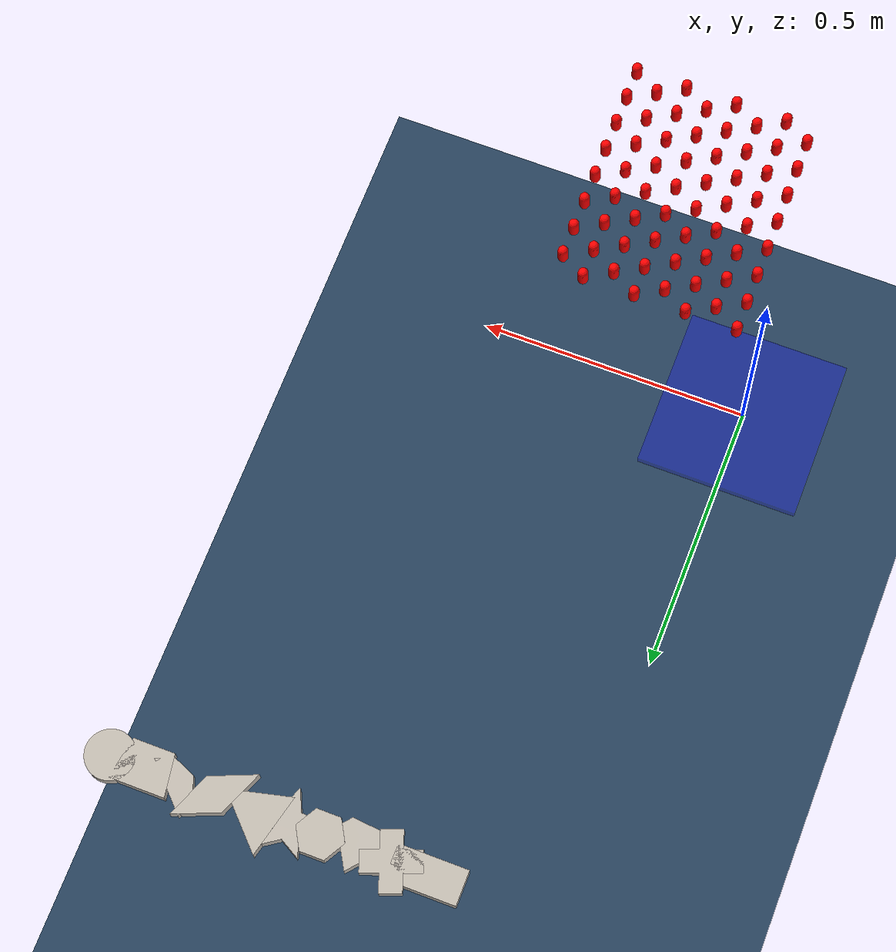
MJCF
<mujoco model="scene">
    <include file="delta_array.xml"/>

    <compiler autolimits="true" angle="degree"/>
    <option integrator="implicitfast" timestep="0.0005">
      <flag multiccd="enable" />
    </option>
    <visual>
      <headlight diffuse="0.6 0.6 0.6" ambient="0.3 0.3 0.3" specular="0 0 0"/>
      <rgba haze="0.15 0.25 0.35 1"/>
      <global fovy="58" azimuth="0" elevation="90"/>
    </visual>
    <statistic center="0.13125 0.1407285 1.5" extent="0.85"/>

    <asset>
      <texture type="skybox" builtin="gradient" rgb1="0.3 0.5 0.7" rgb2="0 0 0" width="512" height="3072"/>
      <texture type="2d" name="groundplane" builtin="checker" mark="edge" rgb1="0.2 0.3 0.4" rgb2="0.1 0.2 0.3"
        markrgb="0.8 0.8 0.8" width="5" height="5"/>
      <material name="groundplane" texture="groundplane" texuniform="true" texrepeat="5 5" reflectance="0.2"/>
      <material name="collision_material" rgba="0 0 0 0"/> <!-- transparent for collision -->
      <material name="visual_material" rgba="0 0 1 0.3"/> <!-- Blue semi-transparent for visual -->
    </asset>

    <worldbody>
      <light pos="0 0 1.5" dir="0 0 -1" directional="true"/>
      <geom name="floor" size="0 0 0.05" type="plane" material="groundplane"/>
    </worldbody>
  </mujoco>

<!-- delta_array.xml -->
<mujoco model="scene">
  <compiler autolimits="true" angle="degree" />
  <option integrator="implicitfast" timestep="0.002">
    <flag multiccd="disable" />
  </option>
  <default>
    <geom type="capsule" size="0.0075 0.01" mass="0.4" condim="6" />
  </default>
  <visual>
    <headlight diffuse="0.6 0.6 0.6" ambient="0.3 0.3 0.3" specular="0 0 0" />
    <rgba haze="0.15 0.25 0.35 1" />
    <global fovy="58" azimuth="0" elevation="90" offwidth="1920" offheight="1080" />
  </visual>
  <statistic center="0.13125 0.1407285 1.5" extent="0.85" />
  <asset>
    <texture type="skybox" builtin="gradient" rgb1="0.3 0.5 0.7" rgb2="0 0 0" width="512" height="3072" />
    <texture type="2d" name="groundplane" builtin="checker" mark="edge" rgb1="0.2 0.3 0.4" rgb2="0.1 0.2 0.3" markrgb="0.8 0.8 0.8" width="300" height="300" />
    <material name="groundplane" texture="groundplane" texuniform="true" texrepeat="5 5" reflectance="0.2" />
    <material name="collision_material" rgba="0 0 0 0" />
    <material name="visual_material" rgba="0 0 1 0.3" />
    <texture name="generic_obj" file="config/assets/texture.png" type="2d" />
    <material name="generic_obj" texture="generic_obj" specular="0.5" shininess="0.5" />
    <mesh file="config/assets/block.obj" scale="1 1 1" />
    <mesh file="config/assets/cross.obj" scale="1 1 1" />
    <mesh file="config/assets/diamond.obj" scale="1 1 1" />
    <mesh file="config/assets/hexagon.obj" scale="1 1 1" />
    <mesh file="config/assets/star.obj" scale="1 1 1" />
    <mesh file="config/assets/triangle.obj" scale="1 1 1" />
    <mesh file="config/assets/parallelogram.obj" scale="1 1 1" />
    <mesh file="config/assets/semicircle.obj" scale="1 1 1" />
    <mesh file="config/assets/trapezium.obj" scale="1 1 1" />
    <mesh file="config/assets/disc.obj" scale="1 1 1" />
  </asset>
  <worldbody>
    <light pos="0 0 1.5" dir="0 0 -1" directional="true" />
    <geom name="floor" size="0 0 0.05" type="plane" material="groundplane" />
    <body name="fingertip_0" pos="0.000000 0.000000 1.100000">
      <geom rgba="1 0 0 1" />
      <joint name="fingertip_0_x" type="slide" axis="1 0 0" limited="true" range="-0.03 0.03" />
      <joint name="fingertip_0_y" type="slide" axis="0 1 0" limited="true" range="-0.03 0.03" />
      <joint name="fingertip_0_z" type="slide" axis="0 0 1" limited="true" range="0.015 0.2" />
    </body>
    <body name="fingertip_1" pos="0.000000 0.043301 1.100000">
      <geom rgba="1 0 0 1" />
      <joint name="fingertip_1_x" type="slide" axis="1 0 0" limited="true" range="-0.03 0.03" />
      <joint name="fingertip_1_y" type="slide" axis="0 1 0" limited="true" range="-0.03 0.03" />
      <joint name="fingertip_1_z" type="slide" axis="0 0 1" limited="true" range="0.015 0.2" />
    </body>
    <body name="fingertip_2" pos="0.000000 0.086602 1.100000">
      <geom rgba="1 0 0 1" />
      <joint name="fingertip_2_x" type="slide" axis="1 0 0" limited="true" range="-0.03 0.03" />
      <joint name="fingertip_2_y" type="slide" axis="0 1 0" limited="true" range="-0.03 0.03" />
      <joint name="fingertip_2_z" type="slide" axis="0 0 1" limited="true" range="0.015 0.2" />
    </body>
    <body name="fingertip_3" pos="0.000000 0.129903 1.100000">
      <geom rgba="1 0 0 1" />
      <joint name="fingertip_3_x" type="slide" axis="1 0 0" limited="true" range="-0.03 0.03" />
      <joint name="fingertip_3_y" type="slide" axis="0 1 0" limited="true" range="-0.03 0.03" />
      <joint name="fingertip_3_z" type="slide" axis="0 0 1" limited="true" range="0.015 0.2" />
    </body>
    <body name="fingertip_4" pos="0.000000 0.173204 1.100000">
      <geom rgba="1 0 0 1" />
      <joint name="fingertip_4_x" type="slide" axis="1 0 0" limited="true" range="-0.03 0.03" />
      <joint name="fingertip_4_y" type="slide" axis="0 1 0" limited="true" range="-0.03 0.03" />
      <joint name="fingertip_4_z" type="slide" axis="0 0 1" limited="true" range="0.015 0.2" />
    </body>
    <body name="fingertip_5" pos="0.000000 0.216505 1.100000">
      <geom rgba="1 0 0 1" />
      <joint name="fingertip_5_x" type="slide" axis="1 0 0" limited="true" range="-0.03 0.03" />
      <joint name="fingertip_5_y" type="slide" axis="0 1 0" limited="true" range="-0.03 0.03" />
      <joint name="fingertip_5_z" type="slide" axis="0 0 1" limited="true" range="0.015 0.2" />
    </body>
    <body name="fingertip_6" pos="0.000000 0.259806 1.100000">
      <geom rgba="1 0 0 1" />
      <joint name="fingertip_6_x" type="slide" axis="1 0 0" limited="true" range="-0.03 0.03" />
      <joint name="fingertip_6_y" type="slide" axis="0 1 0" limited="true" range="-0.03 0.03" />
      <joint name="fingertip_6_z" type="slide" axis="0 0 1" limited="true" range="0.015 0.2" />
    </body>
    <body name="fingertip_7" pos="0.000000 0.303107 1.100000">
      <geom rgba="1 0 0 1" />
      <joint name="fingertip_7_x" type="slide" axis="1 0 0" limited="true" range="-0.03 0.03" />
      <joint name="fingertip_7_y" type="slide" axis="0 1 0" limited="true" range="-0.03 0.03" />
      <joint name="fingertip_7_z" type="slide" axis="0 0 1" limited="true" range="0.015 0.2" />
    </body>
    <body name="fingertip_8" pos="0.037500 -0.021650 1.100000">
      <geom rgba="1 0 0 1" />
      <joint name="fingertip_8_x" type="slide" axis="1 0 0" limited="true" range="-0.03 0.03" />
      <joint name="fingertip_8_y" type="slide" axis="0 1 0" limited="true" range="-0.03 0.03" />
      <joint name="fingertip_8_z" type="slide" axis="0 0 1" limited="true" range="0.015 0.2" />
    </body>
    <body name="fingertip_9" pos="0.037500 0.021651 1.100000">
      <geom rgba="1 0 0 1" />
      <joint name="fingertip_9_x" type="slide" axis="1 0 0" limited="true" range="-0.03 0.03" />
      <joint name="fingertip_9_y" type="slide" axis="0 1 0" limited="true" range="-0.03 0.03" />
      <joint name="fingertip_9_z" type="slide" axis="0 0 1" limited="true" range="0.015 0.2" />
    </body>
    <body name="fingertip_10" pos="0.037500 0.064952 1.100000">
      <geom rgba="1 0 0 1" />
      <joint name="fingertip_10_x" type="slide" axis="1 0 0" limited="true" range="-0.03 0.03" />
      <joint name="fingertip_10_y" type="slide" axis="0 1 0" limited="true" range="-0.03 0.03" />
      <joint name="fingertip_10_z" type="slide" axis="0 0 1" limited="true" range="0.015 0.2" />
    </body>
    <body name="fingertip_11" pos="0.037500 0.108253 1.100000">
      <geom rgba="1 0 0 1" />
      <joint name="fingertip_11_x" type="slide" axis="1 0 0" limited="true" range="-0.03 0.03" />
      <joint name="fingertip_11_y" type="slide" axis="0 1 0" limited="true" range="-0.03 0.03" />
      <joint name="fingertip_11_z" type="slide" axis="0 0 1" limited="true" range="0.015 0.2" />
    </body>
    <body name="fingertip_12" pos="0.037500 0.151554 1.100000">
      <geom rgba="1 0 0 1" />
      <joint name="fingertip_12_x" type="slide" axis="1 0 0" limited="true" range="-0.03 0.03" />
      <joint name="fingertip_12_y" type="slide" axis="0 1 0" limited="true" range="-0.03 0.03" />
      <joint name="fingertip_12_z" type="slide" axis="0 0 1" limited="true" range="0.015 0.2" />
    </body>
    <body name="fingertip_13" pos="0.037500 0.194855 1.100000">
      <geom rgba="1 0 0 1" />
      <joint name="fingertip_13_x" type="slide" axis="1 0 0" limited="true" range="-0.03 0.03" />
      <joint name="fingertip_13_y" type="slide" axis="0 1 0" limited="true" range="-0.03 0.03" />
      <joint name="fingertip_13_z" type="slide" axis="0 0 1" limited="true" range="0.015 0.2" />
    </body>
    <body name="fingertip_14" pos="0.037500 0.238156 1.100000">
      <geom rgba="1 0 0 1" />
      <joint name="fingertip_14_x" type="slide" axis="1 0 0" limited="true" range="-0.03 0.03" />
      <joint name="fingertip_14_y" type="slide" axis="0 1 0" limited="true" range="-0.03 0.03" />
      <joint name="fingertip_14_z" type="slide" axis="0 0 1" limited="true" range="0.015 0.2" />
    </body>
    <body name="fingertip_15" pos="0.037500 0.281457 1.100000">
      <geom rgba="1 0 0 1" />
      <joint name="fingertip_15_x" type="slide" axis="1 0 0" limited="true" range="-0.03 0.03" />
      <joint name="fingertip_15_y" type="slide" axis="0 1 0" limited="true" range="-0.03 0.03" />
      <joint name="fingertip_15_z" type="slide" axis="0 0 1" limited="true" range="0.015 0.2" />
    </body>
    <body name="fingertip_16" pos="0.075000 0.000000 1.100000">
      <geom rgba="1 0 0 1" />
      <joint name="fingertip_16_x" type="slide" axis="1 0 0" limited="true" range="-0.03 0.03" />
      <joint name="fingertip_16_y" type="slide" axis="0 1 0" limited="true" range="-0.03 0.03" />
      <joint name="fingertip_16_z" type="slide" axis="0 0 1" limited="true" range="0.015 0.2" />
    </body>
    <body name="fingertip_17" pos="0.075000 0.043301 1.100000">
      <geom rgba="1 0 0 1" />
      <joint name="fingertip_17_x" type="slide" axis="1 0 0" limited="true" range="-0.03 0.03" />
      <joint name="fingertip_17_y" type="slide" axis="0 1 0" limited="true" range="-0.03 0.03" />
      <joint name="fingertip_17_z" type="slide" axis="0 0 1" limited="true" range="0.015 0.2" />
    </body>
    <body name="fingertip_18" pos="0.075000 0.086602 1.100000">
      <geom rgba="1 0 0 1" />
      <joint name="fingertip_18_x" type="slide" axis="1 0 0" limited="true" range="-0.03 0.03" />
      <joint name="fingertip_18_y" type="slide" axis="0 1 0" limited="true" range="-0.03 0.03" />
      <joint name="fingertip_18_z" type="slide" axis="0 0 1" limited="true" range="0.015 0.2" />
    </body>
    <body name="fingertip_19" pos="0.075000 0.129903 1.100000">
      <geom rgba="1 0 0 1" />
      <joint name="fingertip_19_x" type="slide" axis="1 0 0" limited="true" range="-0.03 0.03" />
      <joint name="fingertip_19_y" type="slide" axis="0 1 0" limited="true" range="-0.03 0.03" />
      <joint name="fingertip_19_z" type="slide" axis="0 0 1" limited="true" range="0.015 0.2" />
    </body>
    <body name="fingertip_20" pos="0.075000 0.173204 1.100000">
      <geom rgba="1 0 0 1" />
      <joint name="fingertip_20_x" type="slide" axis="1 0 0" limited="true" range="-0.03 0.03" />
      <joint name="fingertip_20_y" type="slide" axis="0 1 0" limited="true" range="-0.03 0.03" />
      <joint name="fingertip_20_z" type="slide" axis="0 0 1" limited="true" range="0.015 0.2" />
    </body>
    <body name="fingertip_21" pos="0.075000 0.216505 1.100000">
      <geom rgba="1 0 0 1" />
      <joint name="fingertip_21_x" type="slide" axis="1 0 0" limited="true" range="-0.03 0.03" />
      <joint name="fingertip_21_y" type="slide" axis="0 1 0" limited="true" range="-0.03 0.03" />
      <joint name="fingertip_21_z" type="slide" axis="0 0 1" limited="true" range="0.015 0.2" />
    </body>
    <body name="fingertip_22" pos="0.075000 0.259806 1.100000">
      <geom rgba="1 0 0 1" />
      <joint name="fingertip_22_x" type="slide" axis="1 0 0" limited="true" range="-0.03 0.03" />
      <joint name="fingertip_22_y" type="slide" axis="0 1 0" limited="true" range="-0.03 0.03" />
      <joint name="fingertip_22_z" type="slide" axis="0 0 1" limited="true" range="0.015 0.2" />
    </body>
    <body name="fingertip_23" pos="0.075000 0.303107 1.100000">
      <geom rgba="1 0 0 1" />
      <joint name="fingertip_23_x" type="slide" axis="1 0 0" limited="true" range="-0.03 0.03" />
      <joint name="fingertip_23_y" type="slide" axis="0 1 0" limited="true" range="-0.03 0.03" />
      <joint name="fingertip_23_z" type="slide" axis="0 0 1" limited="true" range="0.015 0.2" />
    </body>
    <body name="fingertip_24" pos="0.112500 -0.021650 1.100000">
      <geom rgba="1 0 0 1" />
      <joint name="fingertip_24_x" type="slide" axis="1 0 0" limited="true" range="-0.03 0.03" />
      <joint name="fingertip_24_y" type="slide" axis="0 1 0" limited="true" range="-0.03 0.03" />
      <joint name="fingertip_24_z" type="slide" axis="0 0 1" limited="true" range="0.015 0.2" />
    </body>
    <body name="fingertip_25" pos="0.112500 0.021651 1.100000">
      <geom rgba="1 0 0 1" />
      <joint name="fingertip_25_x" type="slide" axis="1 0 0" limited="true" range="-0.03 0.03" />
      <joint name="fingertip_25_y" type="slide" axis="0 1 0" limited="true" range="-0.03 0.03" />
      <joint name="fingertip_25_z" type="slide" axis="0 0 1" limited="true" range="0.015 0.2" />
    </body>
    <body name="fingertip_26" pos="0.112500 0.064952 1.100000">
      <geom rgba="1 0 0 1" />
      <joint name="fingertip_26_x" type="slide" axis="1 0 0" limited="true" range="-0.03 0.03" />
      <joint name="fingertip_26_y" type="slide" axis="0 1 0" limited="true" range="-0.03 0.03" />
      <joint name="fingertip_26_z" type="slide" axis="0 0 1" limited="true" range="0.015 0.2" />
    </body>
    <body name="fingertip_27" pos="0.112500 0.108253 1.100000">
      <geom rgba="1 0 0 1" />
      <joint name="fingertip_27_x" type="slide" axis="1 0 0" limited="true" range="-0.03 0.03" />
      <joint name="fingertip_27_y" type="slide" axis="0 1 0" limited="true" range="-0.03 0.03" />
      <joint name="fingertip_27_z" type="slide" axis="0 0 1" limited="true" range="0.015 0.2" />
    </body>
    <body name="fingertip_28" pos="0.112500 0.151554 1.100000">
      <geom rgba="1 0 0 1" />
      <joint name="fingertip_28_x" type="slide" axis="1 0 0" limited="true" range="-0.03 0.03" />
      <joint name="fingertip_28_y" type="slide" axis="0 1 0" limited="true" range="-0.03 0.03" />
      <joint name="fingertip_28_z" type="slide" axis="0 0 1" limited="true" range="0.015 0.2" />
    </body>
    <body name="fingertip_29" pos="0.112500 0.194855 1.100000">
      <geom rgba="1 0 0 1" />
      <joint name="fingertip_29_x" type="slide" axis="1 0 0" limited="true" range="-0.03 0.03" />
      <joint name="fingertip_29_y" type="slide" axis="0 1 0" limited="true" range="-0.03 0.03" />
      <joint name="fingertip_29_z" type="slide" axis="0 0 1" limited="true" range="0.015 0.2" />
    </body>
    <body name="fingertip_30" pos="0.112500 0.238156 1.100000">
      <geom rgba="1 0 0 1" />
      <joint name="fingertip_30_x" type="slide" axis="1 0 0" limited="true" range="-0.03 0.03" />
      <joint name="fingertip_30_y" type="slide" axis="0 1 0" limited="true" range="-0.03 0.03" />
      <joint name="fingertip_30_z" type="slide" axis="0 0 1" limited="true" range="0.015 0.2" />
    </body>
    <body name="fingertip_31" pos="0.112500 0.281457 1.100000">
      <geom rgba="1 0 0 1" />
      <joint name="fingertip_31_x" type="slide" axis="1 0 0" limited="true" range="-0.03 0.03" />
      <joint name="fingertip_31_y" type="slide" axis="0 1 0" limited="true" range="-0.03 0.03" />
      <joint name="fingertip_31_z" type="slide" axis="0 0 1" limited="true" range="0.015 0.2" />
    </body>
    <body name="fingertip_32" pos="0.150000 0.000000 1.100000">
      <geom rgba="1 0 0 1" />
      <joint name="fingertip_32_x" type="slide" axis="1 0 0" limited="true" range="-0.03 0.03" />
      <joint name="fingertip_32_y" type="slide" axis="0 1 0" limited="true" range="-0.03 0.03" />
      <joint name="fingertip_32_z" type="slide" axis="0 0 1" limited="true" range="0.015 0.2" />
    </body>
    <body name="fingertip_33" pos="0.150000 0.043301 1.100000">
      <geom rgba="1 0 0 1" />
      <joint name="fingertip_33_x" type="slide" axis="1 0 0" limited="true" range="-0.03 0.03" />
      <joint name="fingertip_33_y" type="slide" axis="0 1 0" limited="true" range="-0.03 0.03" />
      <joint name="fingertip_33_z" type="slide" axis="0 0 1" limited="true" range="0.015 0.2" />
    </body>
    <body name="fingertip_34" pos="0.150000 0.086602 1.100000">
      <geom rgba="1 0 0 1" />
      <joint name="fingertip_34_x" type="slide" axis="1 0 0" limited="true" range="-0.03 0.03" />
      <joint name="fingertip_34_y" type="slide" axis="0 1 0" limited="true" range="-0.03 0.03" />
      <joint name="fingertip_34_z" type="slide" axis="0 0 1" limited="true" range="0.015 0.2" />
    </body>
    <body name="fingertip_35" pos="0.150000 0.129903 1.100000">
      <geom rgba="1 0 0 1" />
      <joint name="fingertip_35_x" type="slide" axis="1 0 0" limited="true" range="-0.03 0.03" />
      <joint name="fingertip_35_y" type="slide" axis="0 1 0" limited="true" range="-0.03 0.03" />
      <joint name="fingertip_35_z" type="slide" axis="0 0 1" limited="true" range="0.015 0.2" />
    </body>
    <body name="fingertip_36" pos="0.150000 0.173204 1.100000">
      <geom rgba="1 0 0 1" />
      <joint name="fingertip_36_x" type="slide" axis="1 0 0" limited="true" range="-0.03 0.03" />
      <joint name="fingertip_36_y" type="slide" axis="0 1 0" limited="true" range="-0.03 0.03" />
      <joint name="fingertip_36_z" type="slide" axis="0 0 1" limited="true" range="0.015 0.2" />
    </body>
    <body name="fingertip_37" pos="0.150000 0.216505 1.100000">
      <geom rgba="1 0 0 1" />
      <joint name="fingertip_37_x" type="slide" axis="1 0 0" limited="true" range="-0.03 0.03" />
      <joint name="fingertip_37_y" type="slide" axis="0 1 0" limited="true" range="-0.03 0.03" />
      <joint name="fingertip_37_z" type="slide" axis="0 0 1" limited="true" range="0.015 0.2" />
    </body>
    <body name="fingertip_38" pos="0.150000 0.259806 1.100000">
      <geom rgba="1 0 0 1" />
      <joint name="fingertip_38_x" type="slide" axis="1 0 0" limited="true" range="-0.03 0.03" />
      <joint name="fingertip_38_y" type="slide" axis="0 1 0" limited="true" range="-0.03 0.03" />
      <joint name="fingertip_38_z" type="slide" axis="0 0 1" limited="true" range="0.015 0.2" />
    </body>
    <body name="fingertip_39" pos="0.150000 0.303107 1.100000">
      <geom rgba="1 0 0 1" />
      <joint name="fingertip_39_x" type="slide" axis="1 0 0" limited="true" range="-0.03 0.03" />
      <joint name="fingertip_39_y" type="slide" axis="0 1 0" limited="true" range="-0.03 0.03" />
      <joint name="fingertip_39_z" type="slide" axis="0 0 1" limited="true" range="0.015 0.2" />
    </body>
    <body name="fingertip_40" pos="0.187500 -0.021650 1.100000">
      <geom rgba="1 0 0 1" />
      <joint name="fingertip_40_x" type="slide" axis="1 0 0" limited="true" range="-0.03 0.03" />
      <joint name="fingertip_40_y" type="slide" axis="0 1 0" limited="true" range="-0.03 0.03" />
      <joint name="fingertip_40_z" type="slide" axis="0 0 1" limited="true" range="0.015 0.2" />
    </body>
    <body name="fingertip_41" pos="0.187500 0.021651 1.100000">
      <geom rgba="1 0 0 1" />
      <joint name="fingertip_41_x" type="slide" axis="1 0 0" limited="true" range="-0.03 0.03" />
      <joint name="fingertip_41_y" type="slide" axis="0 1 0" limited="true" range="-0.03 0.03" />
      <joint name="fingertip_41_z" type="slide" axis="0 0 1" limited="true" range="0.015 0.2" />
    </body>
    <body name="fingertip_42" pos="0.187500 0.064952 1.100000">
      <geom rgba="1 0 0 1" />
      <joint name="fingertip_42_x" type="slide" axis="1 0 0" limited="true" range="-0.03 0.03" />
      <joint name="fingertip_42_y" type="slide" axis="0 1 0" limited="true" range="-0.03 0.03" />
      <joint name="fingertip_42_z" type="slide" axis="0 0 1" limited="true" range="0.015 0.2" />
    </body>
    <body name="fingertip_43" pos="0.187500 0.108253 1.100000">
      <geom rgba="1 0 0 1" />
      <joint name="fingertip_43_x" type="slide" axis="1 0 0" limited="true" range="-0.03 0.03" />
      <joint name="fingertip_43_y" type="slide" axis="0 1 0" limited="true" range="-0.03 0.03" />
      <joint name="fingertip_43_z" type="slide" axis="0 0 1" limited="true" range="0.015 0.2" />
    </body>
    <body name="fingertip_44" pos="0.187500 0.151554 1.100000">
      <geom rgba="1 0 0 1" />
      <joint name="fingertip_44_x" type="slide" axis="1 0 0" limited="true" range="-0.03 0.03" />
      <joint name="fingertip_44_y" type="slide" axis="0 1 0" limited="true" range="-0.03 0.03" />
      <joint name="fingertip_44_z" type="slide" axis="0 0 1" limited="true" range="0.015 0.2" />
    </body>
    <body name="fingertip_45" pos="0.187500 0.194855 1.100000">
      <geom rgba="1 0 0 1" />
      <joint name="fingertip_45_x" type="slide" axis="1 0 0" limited="true" range="-0.03 0.03" />
      <joint name="fingertip_45_y" type="slide" axis="0 1 0" limited="true" range="-0.03 0.03" />
      <joint name="fingertip_45_z" type="slide" axis="0 0 1" limited="true" range="0.015 0.2" />
    </body>
    <body name="fingertip_46" pos="0.187500 0.238156 1.100000">
      <geom rgba="1 0 0 1" />
      <joint name="fingertip_46_x" type="slide" axis="1 0 0" limited="true" range="-0.03 0.03" />
      <joint name="fingertip_46_y" type="slide" axis="0 1 0" limited="true" range="-0.03 0.03" />
      <joint name="fingertip_46_z" type="slide" axis="0 0 1" limited="true" range="0.015 0.2" />
    </body>
    <body name="fingertip_47" pos="0.187500 0.281457 1.100000">
      <geom rgba="1 0 0 1" />
      <joint name="fingertip_47_x" type="slide" axis="1 0 0" limited="true" range="-0.03 0.03" />
      <joint name="fingertip_47_y" type="slide" axis="0 1 0" limited="true" range="-0.03 0.03" />
      <joint name="fingertip_47_z" type="slide" axis="0 0 1" limited="true" range="0.015 0.2" />
    </body>
    <body name="fingertip_48" pos="0.225000 0.000000 1.100000">
      <geom rgba="1 0 0 1" />
      <joint name="fingertip_48_x" type="slide" axis="1 0 0" limited="true" range="-0.03 0.03" />
      <joint name="fingertip_48_y" type="slide" axis="0 1 0" limited="true" range="-0.03 0.03" />
      <joint name="fingertip_48_z" type="slide" axis="0 0 1" limited="true" range="0.015 0.2" />
    </body>
    <body name="fingertip_49" pos="0.225000 0.043301 1.100000">
      <geom rgba="1 0 0 1" />
      <joint name="fingertip_49_x" type="slide" axis="1 0 0" limited="true" range="-0.03 0.03" />
      <joint name="fingertip_49_y" type="slide" axis="0 1 0" limited="true" range="-0.03 0.03" />
      <joint name="fingertip_49_z" type="slide" axis="0 0 1" limited="true" range="0.015 0.2" />
    </body>
    <body name="fingertip_50" pos="0.225000 0.086602 1.100000">
      <geom rgba="1 0 0 1" />
      <joint name="fingertip_50_x" type="slide" axis="1 0 0" limited="true" range="-0.03 0.03" />
      <joint name="fingertip_50_y" type="slide" axis="0 1 0" limited="true" range="-0.03 0.03" />
      <joint name="fingertip_50_z" type="slide" axis="0 0 1" limited="true" range="0.015 0.2" />
    </body>
    <body name="fingertip_51" pos="0.225000 0.129903 1.100000">
      <geom rgba="1 0 0 1" />
      <joint name="fingertip_51_x" type="slide" axis="1 0 0" limited="true" range="-0.03 0.03" />
      <joint name="fingertip_51_y" type="slide" axis="0 1 0" limited="true" range="-0.03 0.03" />
      <joint name="fingertip_51_z" type="slide" axis="0 0 1" limited="true" range="0.015 0.2" />
    </body>
    <body name="fingertip_52" pos="0.225000 0.173204 1.100000">
      <geom rgba="1 0 0 1" />
      <joint name="fingertip_52_x" type="slide" axis="1 0 0" limited="true" range="-0.03 0.03" />
      <joint name="fingertip_52_y" type="slide" axis="0 1 0" limited="true" range="-0.03 0.03" />
      <joint name="fingertip_52_z" type="slide" axis="0 0 1" limited="true" range="0.015 0.2" />
    </body>
    <body name="fingertip_53" pos="0.225000 0.216505 1.100000">
      <geom rgba="1 0 0 1" />
      <joint name="fingertip_53_x" type="slide" axis="1 0 0" limited="true" range="-0.03 0.03" />
      <joint name="fingertip_53_y" type="slide" axis="0 1 0" limited="true" range="-0.03 0.03" />
      <joint name="fingertip_53_z" type="slide" axis="0 0 1" limited="true" range="0.015 0.2" />
    </body>
    <body name="fingertip_54" pos="0.225000 0.259806 1.100000">
      <geom rgba="1 0 0 1" />
      <joint name="fingertip_54_x" type="slide" axis="1 0 0" limited="true" range="-0.03 0.03" />
      <joint name="fingertip_54_y" type="slide" axis="0 1 0" limited="true" range="-0.03 0.03" />
      <joint name="fingertip_54_z" type="slide" axis="0 0 1" limited="true" range="0.015 0.2" />
    </body>
    <body name="fingertip_55" pos="0.225000 0.303107 1.100000">
      <geom rgba="1 0 0 1" />
      <joint name="fingertip_55_x" type="slide" axis="1 0 0" limited="true" range="-0.03 0.03" />
      <joint name="fingertip_55_y" type="slide" axis="0 1 0" limited="true" range="-0.03 0.03" />
      <joint name="fingertip_55_z" type="slide" axis="0 0 1" limited="true" range="0.015 0.2" />
    </body>
    <body name="fingertip_56" pos="0.262500 -0.021650 1.100000">
      <geom rgba="1 0 0 1" />
      <joint name="fingertip_56_x" type="slide" axis="1 0 0" limited="true" range="-0.03 0.03" />
      <joint name="fingertip_56_y" type="slide" axis="0 1 0" limited="true" range="-0.03 0.03" />
      <joint name="fingertip_56_z" type="slide" axis="0 0 1" limited="true" range="0.015 0.2" />
    </body>
    <body name="fingertip_57" pos="0.262500 0.021651 1.100000">
      <geom rgba="1 0 0 1" />
      <joint name="fingertip_57_x" type="slide" axis="1 0 0" limited="true" range="-0.03 0.03" />
      <joint name="fingertip_57_y" type="slide" axis="0 1 0" limited="true" range="-0.03 0.03" />
      <joint name="fingertip_57_z" type="slide" axis="0 0 1" limited="true" range="0.015 0.2" />
    </body>
    <body name="fingertip_58" pos="0.262500 0.064952 1.100000">
      <geom rgba="1 0 0 1" />
      <joint name="fingertip_58_x" type="slide" axis="1 0 0" limited="true" range="-0.03 0.03" />
      <joint name="fingertip_58_y" type="slide" axis="0 1 0" limited="true" range="-0.03 0.03" />
      <joint name="fingertip_58_z" type="slide" axis="0 0 1" limited="true" range="0.015 0.2" />
    </body>
    <body name="fingertip_59" pos="0.262500 0.108253 1.100000">
      <geom rgba="1 0 0 1" />
      <joint name="fingertip_59_x" type="slide" axis="1 0 0" limited="true" range="-0.03 0.03" />
      <joint name="fingertip_59_y" type="slide" axis="0 1 0" limited="true" range="-0.03 0.03" />
      <joint name="fingertip_59_z" type="slide" axis="0 0 1" limited="true" range="0.015 0.2" />
    </body>
    <body name="fingertip_60" pos="0.262500 0.151554 1.100000">
      <geom rgba="1 0 0 1" />
      <joint name="fingertip_60_x" type="slide" axis="1 0 0" limited="true" range="-0.03 0.03" />
      <joint name="fingertip_60_y" type="slide" axis="0 1 0" limited="true" range="-0.03 0.03" />
      <joint name="fingertip_60_z" type="slide" axis="0 0 1" limited="true" range="0.015 0.2" />
    </body>
    <body name="fingertip_61" pos="0.262500 0.194855 1.100000">
      <geom rgba="1 0 0 1" />
      <joint name="fingertip_61_x" type="slide" axis="1 0 0" limited="true" range="-0.03 0.03" />
      <joint name="fingertip_61_y" type="slide" axis="0 1 0" limited="true" range="-0.03 0.03" />
      <joint name="fingertip_61_z" type="slide" axis="0 0 1" limited="true" range="0.015 0.2" />
    </body>
    <body name="fingertip_62" pos="0.262500 0.238156 1.100000">
      <geom rgba="1 0 0 1" />
      <joint name="fingertip_62_x" type="slide" axis="1 0 0" limited="true" range="-0.03 0.03" />
      <joint name="fingertip_62_y" type="slide" axis="0 1 0" limited="true" range="-0.03 0.03" />
      <joint name="fingertip_62_z" type="slide" axis="0 0 1" limited="true" range="0.015 0.2" />
    </body>
    <body name="fingertip_63" pos="0.262500 0.281457 1.100000">
      <geom rgba="1 0 0 1" />
      <joint name="fingertip_63_x" type="slide" axis="1 0 0" limited="true" range="-0.03 0.03" />
      <joint name="fingertip_63_y" type="slide" axis="0 1 0" limited="true" range="-0.03 0.03" />
      <joint name="fingertip_63_z" type="slide" axis="0 0 1" limited="true" range="0.015 0.2" />
    </body>
    <body name="transparent_table" pos="0 0 0">
      <geom name="collision_geom" type="box" size="1 1 1" contype="1" conaffinity="1" condim="4" material="collision_material" />
      <geom name="visual_geom" type="box" size="0.15 0.15 0.015" contype="0" conaffinity="0" material="visual_material" />
    </body>
    <body name="block" pos="0.13125 1.1407285 1.0201" euler="90 0 0">
      <freejoint />
      <geom name="block" type="mesh" mesh="block" material="generic_obj" mass="0.05" condim="6" />
    </body>
    <body name="cross" pos="0.18125000000000002 1.1407285 1.0201" euler="90 0 0">
      <freejoint />
      <geom name="cross" type="mesh" mesh="cross" material="generic_obj" mass="0.05" condim="6" />
    </body>
    <body name="diamond" pos="0.23125 1.1407285 1.0201" euler="90 0 0">
      <freejoint />
      <geom name="diamond" type="mesh" mesh="diamond" material="generic_obj" mass="0.05" condim="6" />
    </body>
    <body name="hexagon" pos="0.28125 1.1407285 1.0201" euler="90 0 0">
      <freejoint />
      <geom name="hexagon" type="mesh" mesh="hexagon" material="generic_obj" mass="0.05" condim="6" />
    </body>
    <body name="star" pos="0.33125000000000004 1.1407285 1.0201" euler="90 0 0">
      <freejoint />
      <geom name="star" type="mesh" mesh="star" material="generic_obj" mass="0.05" condim="6" />
    </body>
    <body name="triangle" pos="0.38125 1.1407285 1.0201" euler="90 0 0">
      <freejoint />
      <geom name="triangle" type="mesh" mesh="triangle" material="generic_obj" mass="0.05" condim="6" />
    </body>
    <body name="parallelogram" pos="0.43125 1.1407285 1.0201" euler="90 0 0">
      <freejoint />
      <geom name="parallelogram" type="mesh" mesh="parallelogram" material="generic_obj" mass="0.05" condim="6" />
    </body>
    <body name="semicircle" pos="0.48125000000000007 1.1407285 1.0201" euler="90 0 0">
      <freejoint />
      <geom name="semicircle" type="mesh" mesh="semicircle" material="generic_obj" mass="0.05" condim="6" />
    </body>
    <body name="trapezium" pos="0.53125 1.1407285 1.0201" euler="90 0 0">
      <freejoint />
      <geom name="trapezium" type="mesh" mesh="trapezium" material="generic_obj" mass="0.05" condim="6" />
    </body>
    <body name="disc" pos="0.58125 1.1407285 1.0201" euler="90 0 0">
      <freejoint />
      <geom name="disc" type="mesh" mesh="disc" material="generic_obj" mass="0.05" condim="6" />
    </body>
  </worldbody>
  <actuator>
    <position name="act_fingertip_0_x" joint="fingertip_0_x" ctrllimited="true" ctrlrange="-0.03 0.03" kp="50" kv="20" />
    <position name="act_fingertip_0_y" joint="fingertip_0_y" ctrllimited="true" ctrlrange="-0.03 0.03" kp="50" kv="20" />
    <position name="act_fingertip_1_x" joint="fingertip_1_x" ctrllimited="true" ctrlrange="-0.03 0.03" kp="50" kv="20" />
    <position name="act_fingertip_1_y" joint="fingertip_1_y" ctrllimited="true" ctrlrange="-0.03 0.03" kp="50" kv="20" />
    <position name="act_fingertip_2_x" joint="fingertip_2_x" ctrllimited="true" ctrlrange="-0.03 0.03" kp="50" kv="20" />
    <position name="act_fingertip_2_y" joint="fingertip_2_y" ctrllimited="true" ctrlrange="-0.03 0.03" kp="50" kv="20" />
    <position name="act_fingertip_3_x" joint="fingertip_3_x" ctrllimited="true" ctrlrange="-0.03 0.03" kp="50" kv="20" />
    <position name="act_fingertip_3_y" joint="fingertip_3_y" ctrllimited="true" ctrlrange="-0.03 0.03" kp="50" kv="20" />
    <position name="act_fingertip_4_x" joint="fingertip_4_x" ctrllimited="true" ctrlrange="-0.03 0.03" kp="50" kv="20" />
    <position name="act_fingertip_4_y" joint="fingertip_4_y" ctrllimited="true" ctrlrange="-0.03 0.03" kp="50" kv="20" />
    <position name="act_fingertip_5_x" joint="fingertip_5_x" ctrllimited="true" ctrlrange="-0.03 0.03" kp="50" kv="20" />
    <position name="act_fingertip_5_y" joint="fingertip_5_y" ctrllimited="true" ctrlrange="-0.03 0.03" kp="50" kv="20" />
    <position name="act_fingertip_6_x" joint="fingertip_6_x" ctrllimited="true" ctrlrange="-0.03 0.03" kp="50" kv="20" />
    <position name="act_fingertip_6_y" joint="fingertip_6_y" ctrllimited="true" ctrlrange="-0.03 0.03" kp="50" kv="20" />
    <position name="act_fingertip_7_x" joint="fingertip_7_x" ctrllimited="true" ctrlrange="-0.03 0.03" kp="50" kv="20" />
    <position name="act_fingertip_7_y" joint="fingertip_7_y" ctrllimited="true" ctrlrange="-0.03 0.03" kp="50" kv="20" />
    <position name="act_fingertip_8_x" joint="fingertip_8_x" ctrllimited="true" ctrlrange="-0.03 0.03" kp="50" kv="20" />
    <position name="act_fingertip_8_y" joint="fingertip_8_y" ctrllimited="true" ctrlrange="-0.03 0.03" kp="50" kv="20" />
    <position name="act_fingertip_9_x" joint="fingertip_9_x" ctrllimited="true" ctrlrange="-0.03 0.03" kp="50" kv="20" />
    <position name="act_fingertip_9_y" joint="fingertip_9_y" ctrllimited="true" ctrlrange="-0.03 0.03" kp="50" kv="20" />
    <position name="act_fingertip_10_x" joint="fingertip_10_x" ctrllimited="true" ctrlrange="-0.03 0.03" kp="50" kv="20" />
    <position name="act_fingertip_10_y" joint="fingertip_10_y" ctrllimited="true" ctrlrange="-0.03 0.03" kp="50" kv="20" />
    <position name="act_fingertip_11_x" joint="fingertip_11_x" ctrllimited="true" ctrlrange="-0.03 0.03" kp="50" kv="20" />
    <position name="act_fingertip_11_y" joint="fingertip_11_y" ctrllimited="true" ctrlrange="-0.03 0.03" kp="50" kv="20" />
    <position name="act_fingertip_12_x" joint="fingertip_12_x" ctrllimited="true" ctrlrange="-0.03 0.03" kp="50" kv="20" />
    <position name="act_fingertip_12_y" joint="fingertip_12_y" ctrllimited="true" ctrlrange="-0.03 0.03" kp="50" kv="20" />
    <position name="act_fingertip_13_x" joint="fingertip_13_x" ctrllimited="true" ctrlrange="-0.03 0.03" kp="50" kv="20" />
    <position name="act_fingertip_13_y" joint="fingertip_13_y" ctrllimited="true" ctrlrange="-0.03 0.03" kp="50" kv="20" />
    <position name="act_fingertip_14_x" joint="fingertip_14_x" ctrllimited="true" ctrlrange="-0.03 0.03" kp="50" kv="20" />
    <position name="act_fingertip_14_y" joint="fingertip_14_y" ctrllimited="true" ctrlrange="-0.03 0.03" kp="50" kv="20" />
    <position name="act_fingertip_15_x" joint="fingertip_15_x" ctrllimited="true" ctrlrange="-0.03 0.03" kp="50" kv="20" />
    <position name="act_fingertip_15_y" joint="fingertip_15_y" ctrllimited="true" ctrlrange="-0.03 0.03" kp="50" kv="20" />
    <position name="act_fingertip_16_x" joint="fingertip_16_x" ctrllimited="true" ctrlrange="-0.03 0.03" kp="50" kv="20" />
    <position name="act_fingertip_16_y" joint="fingertip_16_y" ctrllimited="true" ctrlrange="-0.03 0.03" kp="50" kv="20" />
    <position name="act_fingertip_17_x" joint="fingertip_17_x" ctrllimited="true" ctrlrange="-0.03 0.03" kp="50" kv="20" />
    <position name="act_fingertip_17_y" joint="fingertip_17_y" ctrllimited="true" ctrlrange="-0.03 0.03" kp="50" kv="20" />
    <position name="act_fingertip_18_x" joint="fingertip_18_x" ctrllimited="true" ctrlrange="-0.03 0.03" kp="50" kv="20" />
    <position name="act_fingertip_18_y" joint="fingertip_18_y" ctrllimited="true" ctrlrange="-0.03 0.03" kp="50" kv="20" />
    <position name="act_fingertip_19_x" joint="fingertip_19_x" ctrllimited="true" ctrlrange="-0.03 0.03" kp="50" kv="20" />
    <position name="act_fingertip_19_y" joint="fingertip_19_y" ctrllimited="true" ctrlrange="-0.03 0.03" kp="50" kv="20" />
    <position name="act_fingertip_20_x" joint="fingertip_20_x" ctrllimited="true" ctrlrange="-0.03 0.03" kp="50" kv="20" />
    <position name="act_fingertip_20_y" joint="fingertip_20_y" ctrllimited="true" ctrlrange="-0.03 0.03" kp="50" kv="20" />
    <position name="act_fingertip_21_x" joint="fingertip_21_x" ctrllimited="true" ctrlrange="-0.03 0.03" kp="50" kv="20" />
    <position name="act_fingertip_21_y" joint="fingertip_21_y" ctrllimited="true" ctrlrange="-0.03 0.03" kp="50" kv="20" />
    <position name="act_fingertip_22_x" joint="fingertip_22_x" ctrllimited="true" ctrlrange="-0.03 0.03" kp="50" kv="20" />
    <position name="act_fingertip_22_y" joint="fingertip_22_y" ctrllimited="true" ctrlrange="-0.03 0.03" kp="50" kv="20" />
    <position name="act_fingertip_23_x" joint="fingertip_23_x" ctrllimited="true" ctrlrange="-0.03 0.03" kp="50" kv="20" />
    <position name="act_fingertip_23_y" joint="fingertip_23_y" ctrllimited="true" ctrlrange="-0.03 0.03" kp="50" kv="20" />
    <position name="act_fingertip_24_x" joint="fingertip_24_x" ctrllimited="true" ctrlrange="-0.03 0.03" kp="50" kv="20" />
    <position name="act_fingertip_24_y" joint="fingertip_24_y" ctrllimited="true" ctrlrange="-0.03 0.03" kp="50" kv="20" />
    <position name="act_fingertip_25_x" joint="fingertip_25_x" ctrllimited="true" ctrlrange="-0.03 0.03" kp="50" kv="20" />
    <position name="act_fingertip_25_y" joint="fingertip_25_y" ctrllimited="true" ctrlrange="-0.03 0.03" kp="50" kv="20" />
    <position name="act_fingertip_26_x" joint="fingertip_26_x" ctrllimited="true" ctrlrange="-0.03 0.03" kp="50" kv="20" />
    <position name="act_fingertip_26_y" joint="fingertip_26_y" ctrllimited="true" ctrlrange="-0.03 0.03" kp="50" kv="20" />
    <position name="act_fingertip_27_x" joint="fingertip_27_x" ctrllimited="true" ctrlrange="-0.03 0.03" kp="50" kv="20" />
    <position name="act_fingertip_27_y" joint="fingertip_27_y" ctrllimited="true" ctrlrange="-0.03 0.03" kp="50" kv="20" />
    <position name="act_fingertip_28_x" joint="fingertip_28_x" ctrllimited="true" ctrlrange="-0.03 0.03" kp="50" kv="20" />
    <position name="act_fingertip_28_y" joint="fingertip_28_y" ctrllimited="true" ctrlrange="-0.03 0.03" kp="50" kv="20" />
    <position name="act_fingertip_29_x" joint="fingertip_29_x" ctrllimited="true" ctrlrange="-0.03 0.03" kp="50" kv="20" />
    <position name="act_fingertip_29_y" joint="fingertip_29_y" ctrllimited="true" ctrlrange="-0.03 0.03" kp="50" kv="20" />
    <position name="act_fingertip_30_x" joint="fingertip_30_x" ctrllimited="true" ctrlrange="-0.03 0.03" kp="50" kv="20" />
    <position name="act_fingertip_30_y" joint="fingertip_30_y" ctrllimited="true" ctrlrange="-0.03 0.03" kp="50" kv="20" />
    <position name="act_fingertip_31_x" joint="fingertip_31_x" ctrllimited="true" ctrlrange="-0.03 0.03" kp="50" kv="20" />
    <position name="act_fingertip_31_y" joint="fingertip_31_y" ctrllimited="true" ctrlrange="-0.03 0.03" kp="50" kv="20" />
    <position name="act_fingertip_32_x" joint="fingertip_32_x" ctrllimited="true" ctrlrange="-0.03 0.03" kp="50" kv="20" />
    <position name="act_fingertip_32_y" joint="fingertip_32_y" ctrllimited="true" ctrlrange="-0.03 0.03" kp="50" kv="20" />
    <position name="act_fingertip_33_x" joint="fingertip_33_x" ctrllimited="true" ctrlrange="-0.03 0.03" kp="50" kv="20" />
    <position name="act_fingertip_33_y" joint="fingertip_33_y" ctrllimited="true" ctrlrange="-0.03 0.03" kp="50" kv="20" />
    <position name="act_fingertip_34_x" joint="fingertip_34_x" ctrllimited="true" ctrlrange="-0.03 0.03" kp="50" kv="20" />
    <position name="act_fingertip_34_y" joint="fingertip_34_y" ctrllimited="true" ctrlrange="-0.03 0.03" kp="50" kv="20" />
    <position name="act_fingertip_35_x" joint="fingertip_35_x" ctrllimited="true" ctrlrange="-0.03 0.03" kp="50" kv="20" />
    <position name="act_fingertip_35_y" joint="fingertip_35_y" ctrllimited="true" ctrlrange="-0.03 0.03" kp="50" kv="20" />
    <position name="act_fingertip_36_x" joint="fingertip_36_x" ctrllimited="true" ctrlrange="-0.03 0.03" kp="50" kv="20" />
    <position name="act_fingertip_36_y" joint="fingertip_36_y" ctrllimited="true" ctrlrange="-0.03 0.03" kp="50" kv="20" />
    <position name="act_fingertip_37_x" joint="fingertip_37_x" ctrllimited="true" ctrlrange="-0.03 0.03" kp="50" kv="20" />
    <position name="act_fingertip_37_y" joint="fingertip_37_y" ctrllimited="true" ctrlrange="-0.03 0.03" kp="50" kv="20" />
    <position name="act_fingertip_38_x" joint="fingertip_38_x" ctrllimited="true" ctrlrange="-0.03 0.03" kp="50" kv="20" />
    <position name="act_fingertip_38_y" joint="fingertip_38_y" ctrllimited="true" ctrlrange="-0.03 0.03" kp="50" kv="20" />
    <position name="act_fingertip_39_x" joint="fingertip_39_x" ctrllimited="true" ctrlrange="-0.03 0.03" kp="50" kv="20" />
    <position name="act_fingertip_39_y" joint="fingertip_39_y" ctrllimited="true" ctrlrange="-0.03 0.03" kp="50" kv="20" />
    <position name="act_fingertip_40_x" joint="fingertip_40_x" ctrllimited="true" ctrlrange="-0.03 0.03" kp="50" kv="20" />
    <position name="act_fingertip_40_y" joint="fingertip_40_y" ctrllimited="true" ctrlrange="-0.03 0.03" kp="50" kv="20" />
    <position name="act_fingertip_41_x" joint="fingertip_41_x" ctrllimited="true" ctrlrange="-0.03 0.03" kp="50" kv="20" />
    <position name="act_fingertip_41_y" joint="fingertip_41_y" ctrllimited="true" ctrlrange="-0.03 0.03" kp="50" kv="20" />
    <position name="act_fingertip_42_x" joint="fingertip_42_x" ctrllimited="true" ctrlrange="-0.03 0.03" kp="50" kv="20" />
    <position name="act_fingertip_42_y" joint="fingertip_42_y" ctrllimited="true" ctrlrange="-0.03 0.03" kp="50" kv="20" />
    <position name="act_fingertip_43_x" joint="fingertip_43_x" ctrllimited="true" ctrlrange="-0.03 0.03" kp="50" kv="20" />
    <position name="act_fingertip_43_y" joint="fingertip_43_y" ctrllimited="true" ctrlrange="-0.03 0.03" kp="50" kv="20" />
    <position name="act_fingertip_44_x" joint="fingertip_44_x" ctrllimited="true" ctrlrange="-0.03 0.03" kp="50" kv="20" />
    <position name="act_fingertip_44_y" joint="fingertip_44_y" ctrllimited="true" ctrlrange="-0.03 0.03" kp="50" kv="20" />
    <position name="act_fingertip_45_x" joint="fingertip_45_x" ctrllimited="true" ctrlrange="-0.03 0.03" kp="50" kv="20" />
    <position name="act_fingertip_45_y" joint="fingertip_45_y" ctrllimited="true" ctrlrange="-0.03 0.03" kp="50" kv="20" />
    <position name="act_fingertip_46_x" joint="fingertip_46_x" ctrllimited="true" ctrlrange="-0.03 0.03" kp="50" kv="20" />
    <position name="act_fingertip_46_y" joint="fingertip_46_y" ctrllimited="true" ctrlrange="-0.03 0.03" kp="50" kv="20" />
    <position name="act_fingertip_47_x" joint="fingertip_47_x" ctrllimited="true" ctrlrange="-0.03 0.03" kp="50" kv="20" />
    <position name="act_fingertip_47_y" joint="fingertip_47_y" ctrllimited="true" ctrlrange="-0.03 0.03" kp="50" kv="20" />
    <position name="act_fingertip_48_x" joint="fingertip_48_x" ctrllimited="true" ctrlrange="-0.03 0.03" kp="50" kv="20" />
    <position name="act_fingertip_48_y" joint="fingertip_48_y" ctrllimited="true" ctrlrange="-0.03 0.03" kp="50" kv="20" />
    <position name="act_fingertip_49_x" joint="fingertip_49_x" ctrllimited="true" ctrlrange="-0.03 0.03" kp="50" kv="20" />
    <position name="act_fingertip_49_y" joint="fingertip_49_y" ctrllimited="true" ctrlrange="-0.03 0.03" kp="50" kv="20" />
    <position name="act_fingertip_50_x" joint="fingertip_50_x" ctrllimited="true" ctrlrange="-0.03 0.03" kp="50" kv="20" />
    <position name="act_fingertip_50_y" joint="fingertip_50_y" ctrllimited="true" ctrlrange="-0.03 0.03" kp="50" kv="20" />
    <position name="act_fingertip_51_x" joint="fingertip_51_x" ctrllimited="true" ctrlrange="-0.03 0.03" kp="50" kv="20" />
    <position name="act_fingertip_51_y" joint="fingertip_51_y" ctrllimited="true" ctrlrange="-0.03 0.03" kp="50" kv="20" />
    <position name="act_fingertip_52_x" joint="fingertip_52_x" ctrllimited="true" ctrlrange="-0.03 0.03" kp="50" kv="20" />
    <position name="act_fingertip_52_y" joint="fingertip_52_y" ctrllimited="true" ctrlrange="-0.03 0.03" kp="50" kv="20" />
    <position name="act_fingertip_53_x" joint="fingertip_53_x" ctrllimited="true" ctrlrange="-0.03 0.03" kp="50" kv="20" />
    <position name="act_fingertip_53_y" joint="fingertip_53_y" ctrllimited="true" ctrlrange="-0.03 0.03" kp="50" kv="20" />
    <position name="act_fingertip_54_x" joint="fingertip_54_x" ctrllimited="true" ctrlrange="-0.03 0.03" kp="50" kv="20" />
    <position name="act_fingertip_54_y" joint="fingertip_54_y" ctrllimited="true" ctrlrange="-0.03 0.03" kp="50" kv="20" />
    <position name="act_fingertip_55_x" joint="fingertip_55_x" ctrllimited="true" ctrlrange="-0.03 0.03" kp="50" kv="20" />
    <position name="act_fingertip_55_y" joint="fingertip_55_y" ctrllimited="true" ctrlrange="-0.03 0.03" kp="50" kv="20" />
    <position name="act_fingertip_56_x" joint="fingertip_56_x" ctrllimited="true" ctrlrange="-0.03 0.03" kp="50" kv="20" />
    <position name="act_fingertip_56_y" joint="fingertip_56_y" ctrllimited="true" ctrlrange="-0.03 0.03" kp="50" kv="20" />
    <position name="act_fingertip_57_x" joint="fingertip_57_x" ctrllimited="true" ctrlrange="-0.03 0.03" kp="50" kv="20" />
    <position name="act_fingertip_57_y" joint="fingertip_57_y" ctrllimited="true" ctrlrange="-0.03 0.03" kp="50" kv="20" />
    <position name="act_fingertip_58_x" joint="fingertip_58_x" ctrllimited="true" ctrlrange="-0.03 0.03" kp="50" kv="20" />
    <position name="act_fingertip_58_y" joint="fingertip_58_y" ctrllimited="true" ctrlrange="-0.03 0.03" kp="50" kv="20" />
    <position name="act_fingertip_59_x" joint="fingertip_59_x" ctrllimited="true" ctrlrange="-0.03 0.03" kp="50" kv="20" />
    <position name="act_fingertip_59_y" joint="fingertip_59_y" ctrllimited="true" ctrlrange="-0.03 0.03" kp="50" kv="20" />
    <position name="act_fingertip_60_x" joint="fingertip_60_x" ctrllimited="true" ctrlrange="-0.03 0.03" kp="50" kv="20" />
    <position name="act_fingertip_60_y" joint="fingertip_60_y" ctrllimited="true" ctrlrange="-0.03 0.03" kp="50" kv="20" />
    <position name="act_fingertip_61_x" joint="fingertip_61_x" ctrllimited="true" ctrlrange="-0.03 0.03" kp="50" kv="20" />
    <position name="act_fingertip_61_y" joint="fingertip_61_y" ctrllimited="true" ctrlrange="-0.03 0.03" kp="50" kv="20" />
    <position name="act_fingertip_62_x" joint="fingertip_62_x" ctrllimited="true" ctrlrange="-0.03 0.03" kp="50" kv="20" />
    <position name="act_fingertip_62_y" joint="fingertip_62_y" ctrllimited="true" ctrlrange="-0.03 0.03" kp="50" kv="20" />
    <position name="act_fingertip_63_x" joint="fingertip_63_x" ctrllimited="true" ctrlrange="-0.03 0.03" kp="50" kv="20" />
    <position name="act_fingertip_63_y" joint="fingertip_63_y" ctrllimited="true" ctrlrange="-0.03 0.03" kp="50" kv="20" />
  </actuator>
</mujoco>
